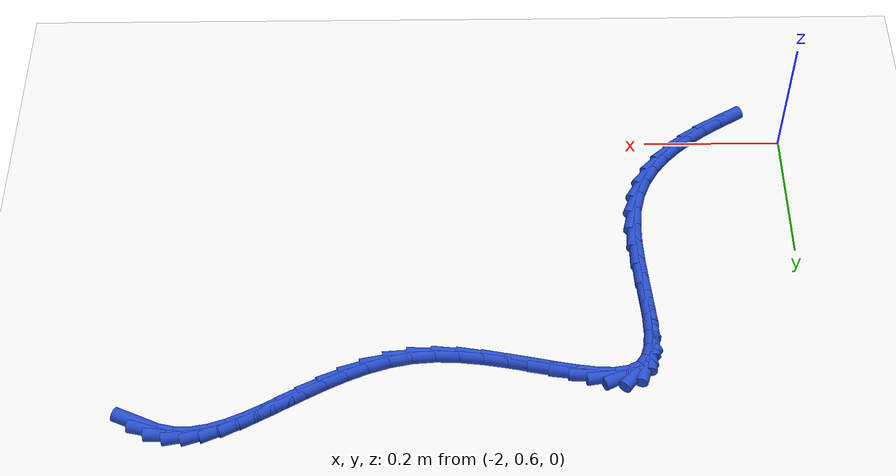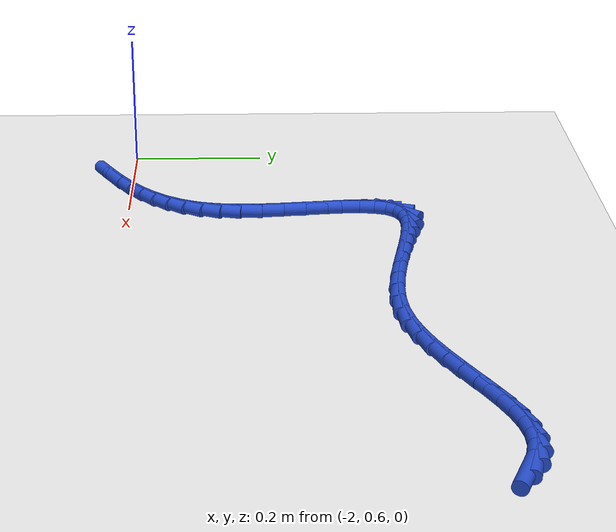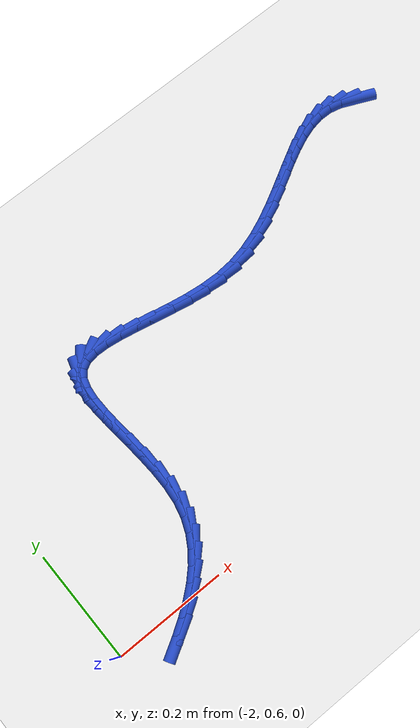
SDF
<sdf version="1.6">
 <world name="default">
  <model name="ground_plane">
   <static>1</static>
   <link name="link">
    <collision name="collision">
     <geometry><plane><normal>0 0 1</normal><size>100 100</size></plane></geometry>
     <surface><friction><ode><mu>100</mu><mu2>50</mu2></ode></friction></surface>
    </collision>
    <visual name="visual">
     <cast_shadows>0</cast_shadows>
     <geometry><plane><normal>0 0 1</normal><size>100 100</size></plane></geometry>
     <material>
      <script><uri>file://media/materials/scripts/gazebo.material</uri><name>Gazebo/WhiteGlow</name></script>
     </material>
    </visual>
   </link>
  </model>
  <model name="line">
   <link name="link_63">
    <pose>-1.094682524356604 1.085764752617094 0.01 0 1.57 -0.41972441520622644</pose>
    <collision name="collision">
     <geometry><cylinder><radius>0.01</radius><length>0.08</length></cylinder></geometry>
    </collision>
    <visual name="visual">
     <material>
      <script><name>Gazebo/Blue</name><uri>file://media/materials/scripts/gazebo.material</uri></script>
     </material>
     <geometry><cylinder><radius>0.01</radius><length>0.08</length></cylinder></geometry>
    </visual>
   </link>
   <link name="link_64">
    <pose>-1.117381572377595 1.095894022182351 0.01 0 1.57 -0.22615706002265334</pose>
    <collision name="collision">
     <geometry><cylinder><radius>0.01</radius><length>0.08</length></cylinder></geometry>
    </collision>
    <visual name="visual">
     <material>
      <script><name>Gazebo/Blue</name><uri>file://media/materials/scripts/gazebo.material</uri></script>
     </material>
     <geometry><cylinder><radius>0.01</radius><length>0.08</length></cylinder></geometry>
    </visual>
   </link>
   <link name="link_65">
    <pose>-1.1401170359788912 1.1011253015000118 0.01 0 1.57 -0.009062266083104282</pose>
    <collision name="collision">
     <geometry><cylinder><radius>0.01</radius><length>0.08</length></cylinder></geometry>
    </collision>
    <visual name="visual">
     <material>
      <script><name>Gazebo/Blue</name><uri>file://media/materials/scripts/gazebo.material</uri></script>
     </material>
     <geometry><cylinder><radius>0.01</radius><length>0.08</length></cylinder></geometry>
    </visual>
   </link>
   <link name="link_66">
    <pose>-1.1630317041132896 1.1013329660046756 0.01 0 1.57 0.17502257249680594</pose>
    <collision name="collision">
     <geometry><cylinder><radius>0.01</radius><length>0.08</length></cylinder></geometry>
    </collision>
    <visual name="visual">
     <material>
      <script><name>Gazebo/Blue</name><uri>file://media/materials/scripts/gazebo.material</uri></script>
     </material>
     <geometry><cylinder><radius>0.01</radius><length>0.08</length></cylinder></geometry>
    </visual>
   </link>
   <link name="link_67">
    <pose>-1.1862193653863622 1.097232647912709 0.01 0 1.57 0.3146177550678856</pose>
    <collision name="collision">
     <geometry><cylinder><radius>0.01</radius><length>0.08</length></cylinder></geometry>
    </collision>
    <visual name="visual">
     <material>
      <script><name>Gazebo/Blue</name><uri>file://media/materials/scripts/gazebo.material</uri></script>
     </material>
     <geometry><cylinder><radius>0.01</radius><length>0.08</length></cylinder></geometry>
    </visual>
   </link>
   <link name="link_68">
    <pose>-1.209772180149117 1.0895679339401911 0.01 0 1.57 0.4117492616157398</pose>
    <collision name="collision">
     <geometry><cylinder><radius>0.01</radius><length>0.08</length></cylinder></geometry>
    </collision>
    <visual name="visual">
     <material>
      <script><name>Gazebo/Blue</name><uri>file://media/materials/scripts/gazebo.material</uri></script>
     </material>
     <geometry><cylinder><radius>0.01</radius><length>0.08</length></cylinder></geometry>
    </visual>
   </link>
   <link name="link_69">
    <pose>-1.2337823087525646 1.0790824108032004 0.01 0 1.57 0.47282164596187476</pose>
    <collision name="collision">
     <geometry><cylinder><radius>0.01</radius><length>0.08</length></cylinder></geometry>
    </collision>
    <visual name="visual">
     <material>
      <script><name>Gazebo/Blue</name><uri>file://media/materials/scripts/gazebo.material</uri></script>
     </material>
     <geometry><cylinder><radius>0.01</radius><length>0.08</length></cylinder></geometry>
    </visual>
   </link>
   <link name="link_70">
    <pose>-1.2583419115477146 1.0665196652178164 0.01 0 1.57 0.5039301826507105</pose>
    <collision name="collision">
     <geometry><cylinder><radius>0.01</radius><length>0.08</length></cylinder></geometry>
    </collision>
    <visual name="visual">
     <material>
      <script><name>Gazebo/Blue</name><uri>file://media/materials/scripts/gazebo.material</uri></script>
     </material>
     <geometry><cylinder><radius>0.01</radius><length>0.08</length></cylinder></geometry>
    </visual>
   </link>
   <link name="link_71">
    <pose>-1.2835431488855755 1.0526232839001173 0.01 0 1.57 0.5093960897733321</pose>
    <collision name="collision">
     <geometry><cylinder><radius>0.01</radius><length>0.08</length></cylinder></geometry>
    </collision>
    <visual name="visual">
     <material>
      <script><name>Gazebo/Blue</name><uri>file://media/materials/scripts/gazebo.material</uri></script>
     </material>
     <geometry><cylinder><radius>0.01</radius><length>0.08</length></cylinder></geometry>
    </visual>
   </link>
   <link name="link_72">
    <pose>-1.3094781811171576 1.0381368535661823 0.01 0 1.57 0.4917118843898677</pose>
    <collision name="collision">
     <geometry><cylinder><radius>0.01</radius><length>0.08</length></cylinder></geometry>
    </collision>
    <visual name="visual">
     <material>
      <script><name>Gazebo/Blue</name><uri>file://media/materials/scripts/gazebo.material</uri></script>
     </material>
     <geometry><cylinder><radius>0.01</radius><length>0.08</length></cylinder></geometry>
    </visual>
   </link>
   <link name="link_73">
    <pose>-1.3362391685934703 1.0238039609320906 0.01 0 1.57 0.45190923290805957</pose>
    <collision name="collision">
     <geometry><cylinder><radius>0.01</radius><length>0.08</length></cylinder></geometry>
    </collision>
    <visual name="visual">
     <material>
      <script><name>Gazebo/Blue</name><uri>file://media/materials/scripts/gazebo.material</uri></script>
     </material>
     <geometry><cylinder><radius>0.01</radius><length>0.08</length></cylinder></geometry>
    </visual>
   </link>
   <link name="link_74">
    <pose>-1.3639182716655236 1.0103681927139208 0.01 0 1.57 0.3900640121930981</pose>
    <collision name="collision">
     <geometry><cylinder><radius>0.01</radius><length>0.08</length></cylinder></geometry>
    </collision>
    <visual name="visual">
     <material>
      <script><name>Gazebo/Blue</name><uri>file://media/materials/scripts/gazebo.material</uri></script>
     </material>
     <geometry><cylinder><radius>0.01</radius><length>0.08</length></cylinder></geometry>
    </visual>
   </link>
   <link name="link_75">
    <pose>-1.3926076506843263 0.9985731356277512 0.01 0 1.57 0.305964867944985</pose>
    <collision name="collision">
     <geometry><cylinder><radius>0.01</radius><length>0.08</length></cylinder></geometry>
    </collision>
    <visual name="visual">
     <material>
      <script><name>Gazebo/Blue</name><uri>file://media/materials/scripts/gazebo.material</uri></script>
     </material>
     <geometry><cylinder><radius>0.01</radius><length>0.08</length></cylinder></geometry>
    </visual>
   </link>
   <link name="link_76">
    <pose>-1.4223994660008883 0.9891623763896618 0.01 0 1.57 0.20005015509806687</pose>
    <collision name="collision">
     <geometry><cylinder><radius>0.01</radius><length>0.08</length></cylinder></geometry>
    </collision>
    <visual name="visual">
     <material>
      <script><name>Gazebo/Blue</name><uri>file://media/materials/scripts/gazebo.material</uri></script>
     </material>
     <geometry><cylinder><radius>0.01</radius><length>0.08</length></cylinder></geometry>
    </visual>
   </link>
   <link name="link_77">
    <pose>-1.4533858779662188 0.9828795017157305 0.01 0 1.57 0.07608631210149942</pose>
    <collision name="collision">
     <geometry><cylinder><radius>0.01</radius><length>0.08</length></cylinder></geometry>
    </collision>
    <visual name="visual">
     <material>
      <script><name>Gazebo/Blue</name><uri>file://media/materials/scripts/gazebo.material</uri></script>
     </material>
     <geometry><cylinder><radius>0.01</radius><length>0.08</length></cylinder></geometry>
    </visual>
   </link>
   <link name="link_78">
    <pose>-1.485639565395241 0.9804206909662172 0.01 0 1.57 -0.036119158654217776</pose>
    <collision name="collision">
     <geometry><cylinder><radius>0.01</radius><length>0.08</length></cylinder></geometry>
    </collision>
    <visual name="visual">
     <material>
      <script><name>Gazebo/Blue</name><uri>file://media/materials/scripts/gazebo.material</uri></script>
     </material>
     <geometry><cylinder><radius>0.01</radius><length>0.08</length></cylinder></geometry>
    </visual>
   </link>
   <link name="link_79">
    <pose>-1.5188796739741832 0.9816218180946944 0.01 0 1.57 -0.11682851350014972</pose>
    <collision name="collision">
     <geometry><cylinder><radius>0.01</radius><length>0.08</length></cylinder></geometry>
    </collision>
    <visual name="visual">
     <material>
      <script><name>Gazebo/Blue</name><uri>file://media/materials/scripts/gazebo.material</uri></script>
     </material>
     <geometry><cylinder><radius>0.01</radius><length>0.08</length></cylinder></geometry>
    </visual>
   </link>
   <link name="link_80">
    <pose>-1.5525175138607052 0.985569654500822 0.01 0 1.57 -0.17048408365037232</pose>
    <collision name="collision">
     <geometry><cylinder><radius>0.01</radius><length>0.08</length></cylinder></geometry>
    </collision>
    <visual name="visual">
     <material>
      <script><name>Gazebo/Blue</name><uri>file://media/materials/scripts/gazebo.material</uri></script>
     </material>
     <geometry><cylinder><radius>0.01</radius><length>0.08</length></cylinder></geometry>
    </visual>
   </link>
   <link name="link_81">
    <pose>-1.5859541081192463 0.991325938451016 0.01 0 1.57 -0.20031635709892606</pose>
    <collision name="collision">
     <geometry><cylinder><radius>0.01</radius><length>0.08</length></cylinder></geometry>
    </collision>
    <visual name="visual">
     <material>
      <script><name>Gazebo/Blue</name><uri>file://media/materials/scripts/gazebo.material</uri></script>
     </material>
     <geometry><cylinder><radius>0.01</radius><length>0.08</length></cylinder></geometry>
    </visual>
   </link>
   <link name="link_82">
    <pose>-1.6185904798142454 0.9979524082116917 0.01 0 1.57 -0.20694889058544935</pose>
    <collision name="collision">
     <geometry><cylinder><radius>0.01</radius><length>0.08</length></cylinder></geometry>
    </collision>
    <visual name="visual">
     <material>
      <script><name>Gazebo/Blue</name><uri>file://media/materials/scripts/gazebo.material</uri></script>
     </material>
     <geometry><cylinder><radius>0.01</radius><length>0.08</length></cylinder></geometry>
    </visual>
   </link>
   <link name="link_83">
    <pose>-1.6498276520101436 1.0045108020492652 0.01 0 1.57 -0.1876512636620786</pose>
    <collision name="collision">
     <geometry><cylinder><radius>0.01</radius><length>0.08</length></cylinder></geometry>
    </collision>
    <visual name="visual">
     <material>
      <script><name>Gazebo/Blue</name><uri>file://media/materials/scripts/gazebo.material</uri></script>
     </material>
     <geometry><cylinder><radius>0.01</radius><length>0.08</length></cylinder></geometry>
    </visual>
   </link>
   <link name="link_84">
    <pose>-1.6790666477713776 1.0100628582301518 0.01 0 1.57 -0.13458712551191082</pose>
    <collision name="collision">
     <geometry><cylinder><radius>0.01</radius><length>0.08</length></cylinder></geometry>
    </collision>
    <visual name="visual">
     <material>
      <script><name>Gazebo/Blue</name><uri>file://media/materials/scripts/gazebo.material</uri></script>
     </material>
     <geometry><cylinder><radius>0.01</radius><length>0.08</length></cylinder></geometry>
    </visual>
   </link>
   <link name="link_85">
    <pose>-1.7057084901623878 1.0136703150207664 0.01 0 1.57 -0.03089541920340655</pose>
    <collision name="collision">
     <geometry><cylinder><radius>0.01</radius><length>0.08</length></cylinder></geometry>
    </collision>
    <visual name="visual">
     <material>
      <script><name>Gazebo/Blue</name><uri>file://media/materials/scripts/gazebo.material</uri></script>
     </material>
     <geometry><cylinder><radius>0.01</radius><length>0.08</length></cylinder></geometry>
    </visual>
   </link>
   <link name="link_86">
    <pose>-1.7291542022476136 1.014394910687526 0.01 0 1.57 0.15629403019128765</pose>
    <collision name="collision">
     <geometry><cylinder><radius>0.01</radius><length>0.08</length></cylinder></geometry>
    </collision>
    <visual name="visual">
     <material>
      <script><name>Gazebo/Blue</name><uri>file://media/materials/scripts/gazebo.material</uri></script>
     </material>
     <geometry><cylinder><radius>0.01</radius><length>0.08</length></cylinder></geometry>
    </visual>
   </link>
   <link name="link_87">
    <pose>-1.7488048070914937 1.011298383496845 0.01 0 1.57 0.4755134924953174</pose>
    <collision name="collision">
     <geometry><cylinder><radius>0.01</radius><length>0.08</length></cylinder></geometry>
    </collision>
    <visual name="visual">
     <material>
      <script><name>Gazebo/Blue</name><uri>file://media/materials/scripts/gazebo.material</uri></script>
     </material>
     <geometry><cylinder><radius>0.01</radius><length>0.08</length></cylinder></geometry>
    </visual>
   </link>
   <link name="link_88">
    <pose>-1.7640613277584678 1.0034424717151393 0.01 0 1.57 0.9152392813382974</pose>
    <collision name="collision">
     <geometry><cylinder><radius>0.01</radius><length>0.08</length></cylinder></geometry>
    </collision>
    <visual name="visual">
     <material>
      <script><name>Gazebo/Blue</name><uri>file://media/materials/scripts/gazebo.material</uri></script>
     </material>
     <geometry><cylinder><radius>0.01</radius><length>0.08</length></cylinder></geometry>
    </visual>
   </link>
   <link name="link_89">
    <pose>-1.7744080769765078 0.9899878399515744 0.01 0 1.57 1.2712355683949863</pose>
    <collision name="collision">
     <geometry><cylinder><radius>0.01</radius><length>0.08</length></cylinder></geometry>
    </collision>
    <visual name="visual">
     <material>
      <script><name>Gazebo/Blue</name><uri>file://media/materials/scripts/gazebo.material</uri></script>
     </material>
     <geometry><cylinder><radius>0.01</radius><length>0.08</length></cylinder></geometry>
    </visual>
   </link>
   <link name="link_90">
    <pose>-1.7802238884876687 0.971157609892005 0.01 0 1.57 1.4764774711139248</pose>
    <collision name="collision">
     <geometry><cylinder><radius>0.01</radius><length>0.08</length></cylinder></geometry>
    </collision>
    <visual name="visual">
     <material>
      <script><name>Gazebo/Blue</name><uri>file://media/materials/scripts/gazebo.material</uri></script>
     </material>
     <geometry><cylinder><radius>0.01</radius><length>0.08</length></cylinder></geometry>
    </visual>
   </link>
   <link name="link_91">
    <pose>-1.7824315258772832 0.9478209496562037 0.01 0 1.57 -1.5533646868298074</pose>
    <collision name="collision">
     <geometry><cylinder><radius>0.01</radius><length>0.08</length></cylinder></geometry>
    </collision>
    <visual name="visual">
     <material>
      <script><name>Gazebo/Blue</name><uri>file://media/materials/scripts/gazebo.material</uri></script>
     </material>
     <geometry><cylinder><radius>0.01</radius><length>0.08</length></cylinder></geometry>
    </visual>
   </link>
   <link name="link_92">
    <pose>-1.7819614376712625 0.9208561550639913 0.01 0 1.57 -1.4963123779035565</pose>
    <collision name="collision">
     <geometry><cylinder><radius>0.01</radius><length>0.08</length></cylinder></geometry>
    </collision>
    <visual name="visual">
     <material>
      <script><name>Gazebo/Blue</name><uri>file://media/materials/scripts/gazebo.material</uri></script>
     </material>
     <geometry><cylinder><radius>0.01</radius><length>0.08</length></cylinder></geometry>
    </visual>
   </link>
   <link name="link_93">
    <pose>-1.7797440723955182 0.8911415219351875 0.01 0 1.57 -1.4750293586223757</pose>
    <collision name="collision">
     <geometry><cylinder><radius>0.01</radius><length>0.08</length></cylinder></geometry>
    </collision>
    <visual name="visual">
     <material>
      <script><name>Gazebo/Blue</name><uri>file://media/materials/scripts/gazebo.material</uri></script>
     </material>
     <geometry><cylinder><radius>0.01</radius><length>0.08</length></cylinder></geometry>
    </visual>
   </link>
   <link name="link_94">
    <pose>-1.7767098785759619 0.8595553460896116 0.01 0 1.57 -1.4813905706121222</pose>
    <collision name="collision">
     <geometry><cylinder><radius>0.01</radius><length>0.08</length></cylinder></geometry>
    </collision>
    <visual name="visual">
     <material>
      <script><name>Gazebo/Blue</name><uri>file://media/materials/scripts/gazebo.material</uri></script>
     </material>
     <geometry><cylinder><radius>0.01</radius><length>0.08</length></cylinder></geometry>
    </visual>
   </link>
   <link name="link_95">
    <pose>-1.7737893047385045 0.8269759233470845 0.01 0 1.57 -1.5134638677618197</pose>
    <collision name="collision">
     <geometry><cylinder><radius>0.01</radius><length>0.08</length></cylinder></geometry>
    </collision>
    <visual name="visual">
     <material>
      <script><name>Gazebo/Blue</name><uri>file://media/materials/scripts/gazebo.material</uri></script>
     </material>
     <geometry><cylinder><radius>0.01</radius><length>0.08</length></cylinder></geometry>
    </visual>
   </link>
   <link name="link_96">
    <pose>-1.7719127994090578 0.7942815495274255 0.01 0 1.57 1.5677268548894219</pose>
    <collision name="collision">
     <geometry><cylinder><radius>0.01</radius><length>0.08</length></cylinder></geometry>
    </collision>
    <visual name="visual">
     <material>
      <script><name>Gazebo/Blue</name><uri>file://media/materials/scripts/gazebo.material</uri></script>
     </material>
     <geometry><cylinder><radius>0.01</radius><length>0.08</length></cylinder></geometry>
    </visual>
   </link>
   <link name="link_97">
    <pose>-1.7720108111135335 0.7623505204504548 0.01 0 1.57 1.4719763780367345</pose>
    <collision name="collision">
     <geometry><cylinder><radius>0.01</radius><length>0.08</length></cylinder></geometry>
    </collision>
    <visual name="visual">
     <material>
      <script><name>Gazebo/Blue</name><uri>file://media/materials/scripts/gazebo.material</uri></script>
     </material>
     <geometry><cylinder><radius>0.01</radius><length>0.08</length></cylinder></geometry>
    </visual>
   </link>
   <link name="link_98">
    <pose>-1.7750137883778425 0.732061131935992 0.01 0 1.57 1.333678282152439</pose>
    <collision name="collision">
     <geometry><cylinder><radius>0.01</radius><length>0.08</length></cylinder></geometry>
    </collision>
    <visual name="visual">
     <material>
      <script><name>Gazebo/Blue</name><uri>file://media/materials/scripts/gazebo.material</uri></script>
     </material>
     <geometry><cylinder><radius>0.01</radius><length>0.08</length></cylinder></geometry>
    </visual>
   </link>
   <link name="link_99">
    <pose>-1.7817465651998088 0.7042010931830368 0.01 0 1.57 1.1794023637344748</pose>
    <collision name="collision">
     <geometry><cylinder><radius>0.01</radius><length>0.08</length></cylinder></geometry>
    </collision>
    <visual name="visual">
     <material>
      <script><name>Gazebo/Blue</name><uri>file://media/materials/scripts/gazebo.material</uri></script>
     </material>
     <geometry><cylinder><radius>0.01</radius><length>0.08</length></cylinder></geometry>
    </visual>
   </link>
   <link name="link_100">
    <pose>-1.7922085374575765 0.6788501269865269 0.01 0 1.57 1.0321248412975463</pose>
    <collision name="collision">
     <geometry><cylinder><radius>0.01</radius><length>0.08</length></cylinder></geometry>
    </collision>
    <visual name="visual">
     <material>
      <script><name>Gazebo/Blue</name><uri>file://media/materials/scripts/gazebo.material</uri></script>
     </material>
     <geometry><cylinder><radius>0.01</radius><length>0.08</length></cylinder></geometry>
    </visual>
   </link>
   <link name="link_101">
    <pose>-1.8060108151613832 0.6557549195287025 0.01 0 1.57 0.8996595162709229</pose>
    <collision name="collision">
     <geometry><cylinder><radius>0.01</radius><length>0.08</length></cylinder></geometry>
    </collision>
    <visual name="visual">
     <material>
      <script><name>Gazebo/Blue</name><uri>file://media/materials/scripts/gazebo.material</uri></script>
     </material>
     <geometry><cylinder><radius>0.01</radius><length>0.08</length></cylinder></geometry>
    </visual>
   </link>
   <link name="link_102">
    <pose>-1.8227622480207883 0.6346602183096538 0.01 0 1.57 0.7864331063638408</pose>
    <collision name="collision">
     <geometry><cylinder><radius>0.01</radius><length>0.08</length></cylinder></geometry>
    </collision>
    <visual name="visual">
     <material>
      <script><name>Gazebo/Blue</name><uri>file://media/materials/scripts/gazebo.material</uri></script>
     </material>
     <geometry><cylinder><radius>0.01</radius><length>0.08</length></cylinder></geometry>
    </visual>
   </link>
   <link name="link_103">
    <pose>-1.842071685745353 0.615310770829473 0.01 0 1.57 0.6937078896137778</pose>
    <collision name="collision">
     <geometry><cylinder><radius>0.01</radius><length>0.08</length></cylinder></geometry>
    </collision>
    <visual name="visual">
     <material>
      <script><name>Gazebo/Blue</name><uri>file://media/materials/scripts/gazebo.material</uri></script>
     </material>
     <geometry><cylinder><radius>0.01</radius><length>0.08</length></cylinder></geometry>
    </visual>
   </link>
   <link name="link_104">
    <pose>-1.863547978044638 0.5974513245882513 0.01 0 1.57 0.6207086374490485</pose>
    <collision name="collision">
     <geometry><cylinder><radius>0.01</radius><length>0.08</length></cylinder></geometry>
    </collision>
    <visual name="visual">
     <material>
      <script><name>Gazebo/Blue</name><uri>file://media/materials/scripts/gazebo.material</uri></script>
     </material>
     <geometry><cylinder><radius>0.01</radius><length>0.08</length></cylinder></geometry>
    </visual>
   </link>
   <link name="link_105">
    <pose>-1.886799974628204 0.5808266270860798 0.01 0 1.57 0.5657867138735456</pose>
    <collision name="collision">
     <geometry><cylinder><radius>0.01</radius><length>0.08</length></cylinder></geometry>
    </collision>
    <visual name="visual">
     <material>
      <script><name>Gazebo/Blue</name><uri>file://media/materials/scripts/gazebo.material</uri></script>
     </material>
     <geometry><cylinder><radius>0.01</radius><length>0.08</length></cylinder></geometry>
    </visual>
   </link>
   <link name="link_106">
    <pose>-1.911436525205611 0.5651814258230496 0.01 0 1.57 0.5272050692038687</pose>
    <collision name="collision">
     <geometry><cylinder><radius>0.01</radius><length>0.08</length></cylinder></geometry>
    </collision>
    <visual name="visual">
     <material>
      <script><name>Gazebo/Blue</name><uri>file://media/materials/scripts/gazebo.material</uri></script>
     </material>
     <geometry><cylinder><radius>0.01</radius><length>0.08</length></cylinder></geometry>
    </visual>
   </link>
  </model>
 </world>
</sdf>
